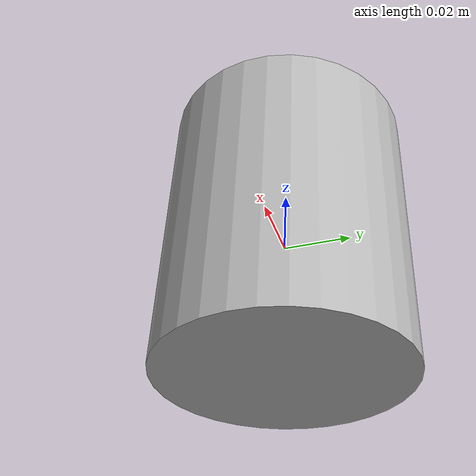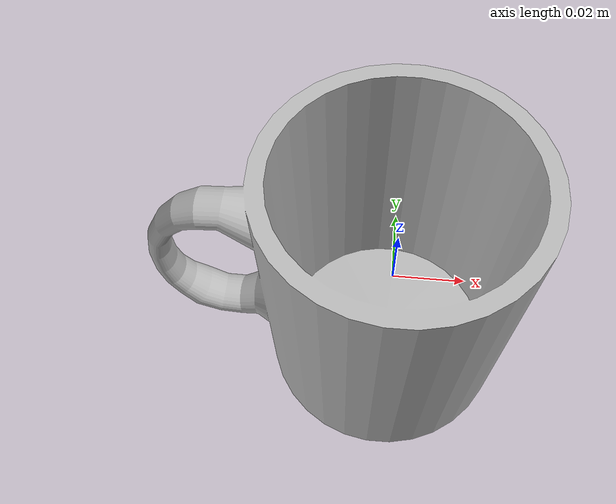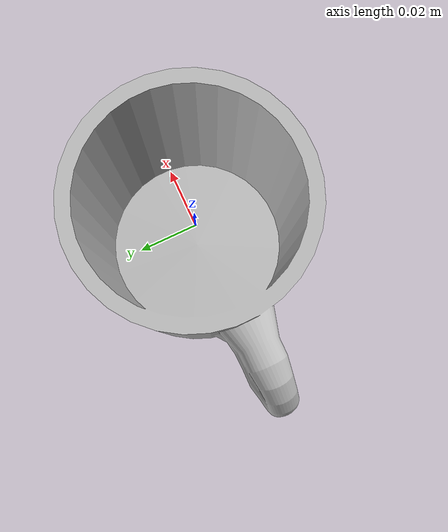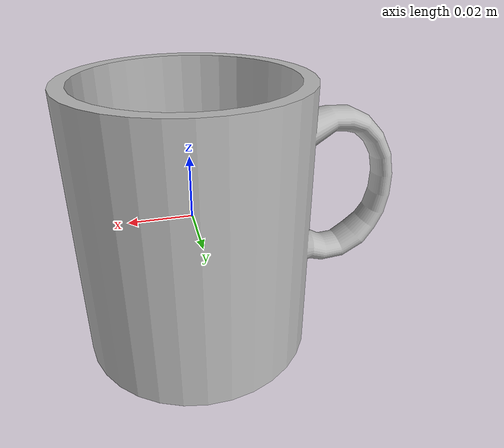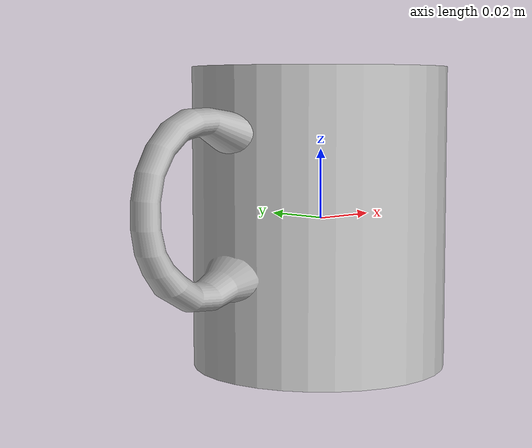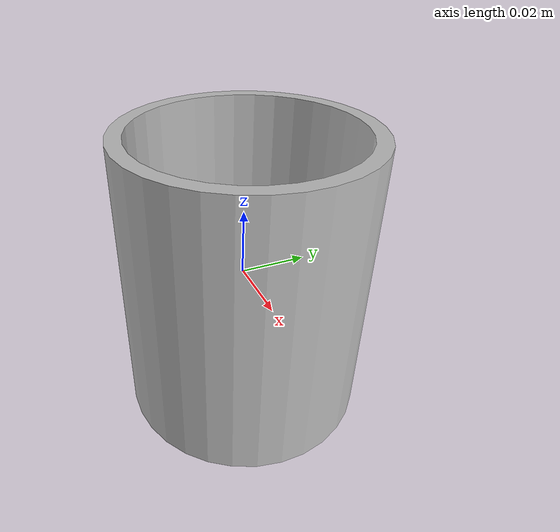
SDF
<?xml version="1.0" ?>
<sdf version="1.5">
  <model name="mug">
    <link name="mug">
      <gravity>false</gravity>
      <inertial>
        <mass>0.02</mass>
      </inertial>
      <collision name="mug_collision">
        <geometry><box><size>0.0001 0.0001 0.0001</size></box></geometry>
          <surface>
            <contact>
              <collide_without_contact>true</collide_without_contact>
            </contact>
          </surface>
      </collision>
      <visual name="mug_visual">
        <geometry>
          <mesh>
            <uri>model://mug/meshes/mug.stl</uri>
          </mesh>
        </geometry>
      </visual>
    </link>
  </model>
</sdf>
